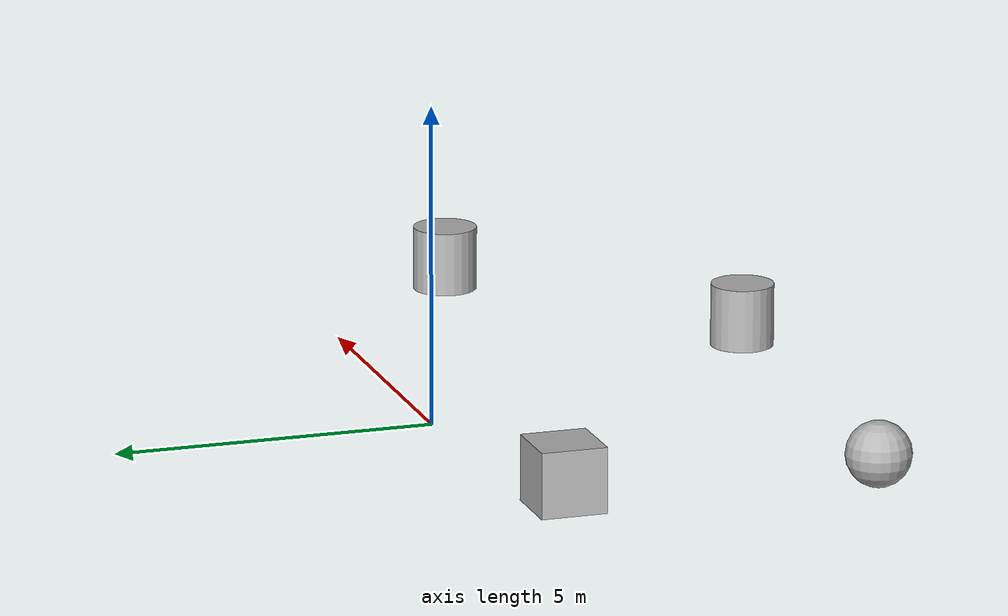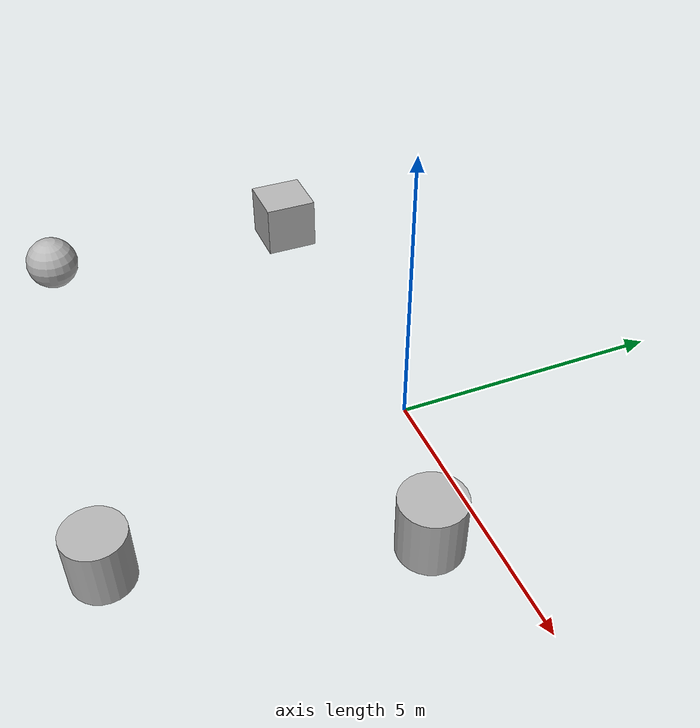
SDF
<sdf version="1.10">
 <world name="empty">
  <physics name="1ms" type="ignored">
   <max_step_size>0.001</max_step_size>
   <real_time_factor>1</real_time_factor>
   <real_time_update_rate>1000</real_time_update_rate>
  </physics>
  <plugin name="gz::sim::systems::Physics" filename="gz-sim-physics-system"/>
  <plugin name="gz::sim::systems::UserCommands" filename="gz-sim-user-commands-system"/>
  <plugin name="gz::sim::systems::SceneBroadcaster" filename="gz-sim-scene-broadcaster-system"/>
  <plugin name="gz::sim::systems::Contact" filename="gz-sim-contact-system"/>
  <gravity>0 0 -9.8000000000000007</gravity>
  <magnetic_field>5.5644999999999998e-06 2.2875799999999999e-05 -4.2388400000000002e-05</magnetic_field>
  <atmosphere type="adiabatic"/>
  <scene>
   <ambient>0.400000006 0.400000006 0.400000006 1</ambient>
   <background>0.699999988 0.699999988 0.699999988 1</background>
   <shadows>true</shadows>
  </scene>
  <model name="ground_plane">
   <static>true</static>
   <link name="link">
    <collision name="collision">
     <geometry><plane><normal>0 0 1</normal><size>100 100</size></plane></geometry>
    </collision>
    <visual name="visual">
     <geometry><plane><normal>0 0 1</normal><size>100 100</size></plane></geometry>
     <material>
      <ambient>0.800000012 0.800000012 0.800000012 1</ambient>
      <diffuse>0.800000012 0.800000012 0.800000012 1</diffuse>
      <specular>0.800000012 0.800000012 0.800000012 1</specular>
     </material>
    </visual>
    <inertial>
     <mass>1</mass>
     <inertia><ixx>1</ixx><ixy>0</ixy><ixz>0</ixz><iyy>1</iyy><iyz>0</iyz><izz>1</izz></inertia>
    </inertial>
   </link>
   <pose>0 0 10 0 0 0</pose>
  </model>
  <model name="cylinder">
   <pose>3.6525137349227434 -1.3648918053748733 1.5745015711714083 0.0013469359831788424 -0.001286158426482373 -8.6370090247230999e-07</pose>
   <link name="cylinder_link">
    <inertial>
     <inertia>
      <ixx>0.14580000000000001</ixx>
      <ixy>0</ixy>
      <ixz>0</ixz>
      <iyy>0.14580000000000001</iyy>
      <iyz>0</iyz>
      <izz>0.125</izz>
     </inertia>
     <mass>1</mass>
    </inertial>
    <collision name="cylinder_collision">
     <geometry><cylinder><radius>0.5</radius><length>1</length></cylinder></geometry>
    </collision>
    <visual name="cylinder_visual">
     <geometry><cylinder><radius>0.5</radius><length>1</length></cylinder></geometry>
     <material>
      <ambient>0.300000012 0.300000012 0.300000012 1</ambient>
      <diffuse>0.699999988 0.699999988 0.699999988 1</diffuse>
      <specular>1 1 1 1</specular>
     </material>
    </visual>
   </link>
   <static>false</static>
  </model>
  <model name="box_0">
   <pose>-5.5361566756952438 -0.25495291343505588 0.84304337744552937 1.3565005250078728e-17 -4.4412876612550232e-17 -5.0295381394204659e-17</pose>
   <link name="box_link">
    <inertial>
     <inertia><ixx>0.16666</ixx><ixy>0</ixy><ixz>0</ixz><iyy>0.16666</iyy><iyz>0</iyz><izz>0.16666</izz></inertia>
     <mass>1</mass>
    </inertial>
    <collision name="box_collision"><geometry><box><size>1 1 1</size></box></geometry></collision>
    <visual name="box_visual">
     <geometry><box><size>1 1 1</size></box></geometry>
     <material>
      <ambient>0.300000012 0.300000012 0.300000012 1</ambient>
      <diffuse>0.699999988 0.699999988 0.699999988 1</diffuse>
      <specular>1 1 1 1</specular>
     </material>
    </visual>
   </link>
   <static>false</static>
  </model>
  <model name="cylinder_0">
   <pose>1.7794871239547985 -5.6767652621994626 0.77537084980795057 1.6114458719767944e-17 1.5094750114481803e-17 7.3395891154641342e-17</pose>
   <link name="cylinder_link">
    <inertial>
     <inertia>
      <ixx>0.14580000000000001</ixx>
      <ixy>0</ixy>
      <ixz>0</ixz>
      <iyy>0.14580000000000001</iyy>
      <iyz>0</iyz>
      <izz>0.125</izz>
     </inertia>
     <mass>1</mass>
    </inertial>
    <collision name="cylinder_collision">
     <geometry><cylinder><radius>0.5</radius><length>1</length></cylinder></geometry>
    </collision>
    <visual name="cylinder_visual">
     <geometry><cylinder><radius>0.5</radius><length>1</length></cylinder></geometry>
     <material>
      <ambient>0.300000012 0.300000012 0.300000012 1</ambient>
      <diffuse>0.699999988 0.699999988 0.699999988 1</diffuse>
      <specular>1 1 1 1</specular>
     </material>
    </visual>
   </link>
   <static>false</static>
  </model>
  <model name="sphere">
   <pose>-5.8042330156015822 -5.0350839486820913 0.76981055595758918 0 0 0</pose>
   <link name="sphere_link">
    <inertial>
     <inertia>
      <ixx>0.10000000000000001</ixx>
      <ixy>0</ixy>
      <ixz>0</ixz>
      <iyy>0.10000000000000001</iyy>
      <iyz>0</iyz>
      <izz>0.10000000000000001</izz>
     </inertia>
     <mass>1</mass>
    </inertial>
    <collision name="sphere_collision"><geometry><sphere><radius>0.5</radius></sphere></geometry></collision>
    <visual name="sphere_visual">
     <geometry><sphere><radius>0.5</radius></sphere></geometry>
     <material>
      <ambient>0.300000012 0.300000012 0.300000012 1</ambient>
      <diffuse>0.699999988 0.699999988 0.699999988 1</diffuse>
      <specular>1 1 1 1</specular>
     </material>
    </visual>
   </link>
   <static>false</static>
  </model>
  <light name="sun" type="directional">
   <pose>0 0 10 0 0 0</pose>
   <intensity>1</intensity>
   <direction>-0.5 0.10000000000000001 -0.90000000000000002</direction>
   <diffuse>0.800000012 0.800000012 0.800000012 1</diffuse>
   <specular>0.200000003 0.200000003 0.200000003 1</specular>
   <attenuation>
    <range>1000</range>
    <linear>0.01</linear>
    <constant>0.90000000000000002</constant>
    <quadratic>0.001</quadratic>
   </attenuation>
   <spot><inner_angle>0</inner_angle><outer_angle>0</outer_angle><falloff>0</falloff></spot>
  </light>
 </world>
</sdf>
